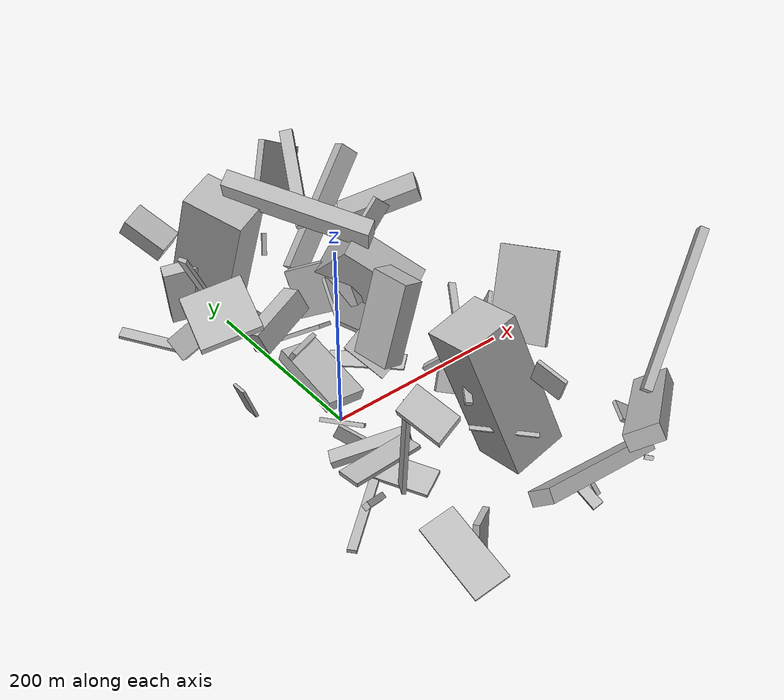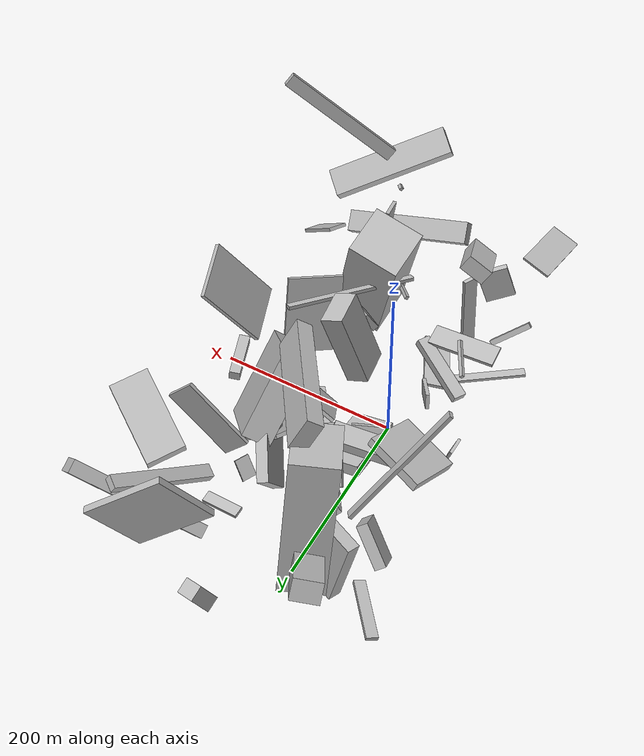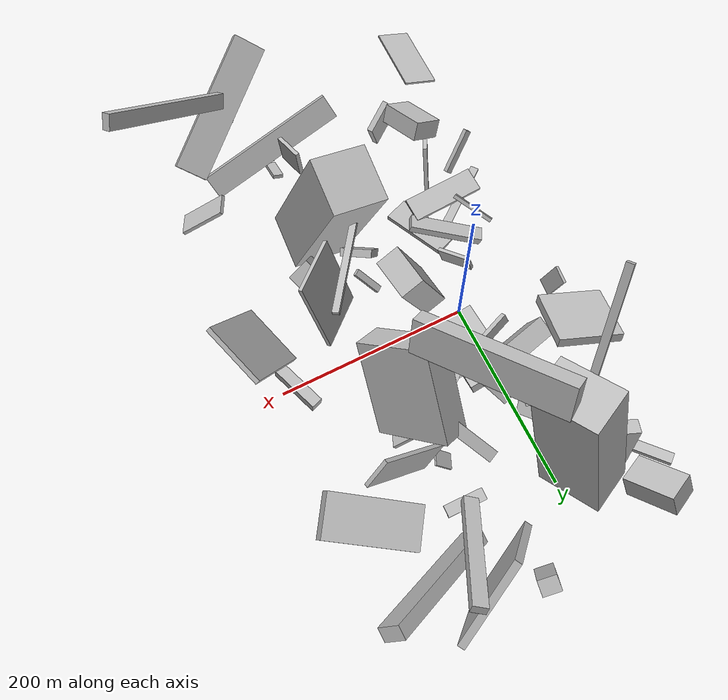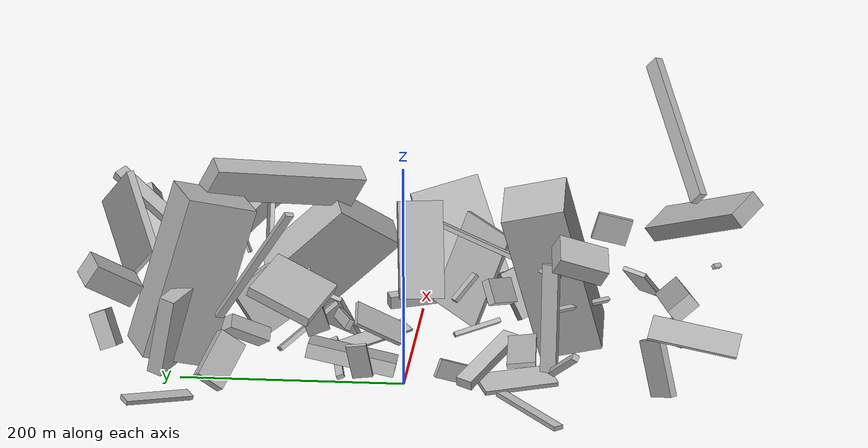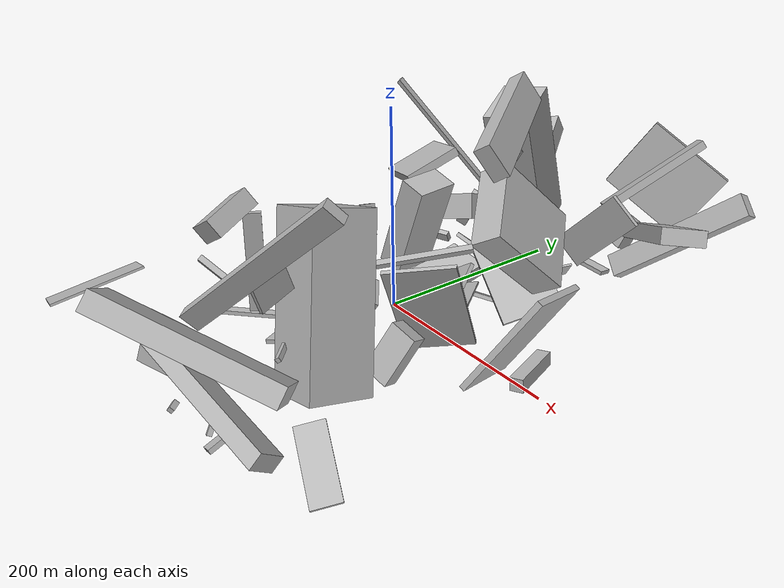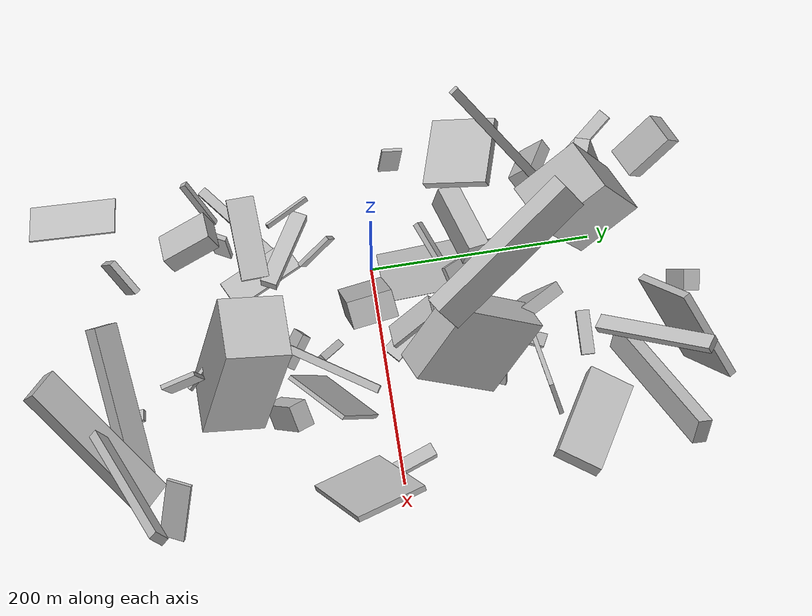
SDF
<sdf version="1.6">
 <world name="default">
  <model name="building_2">
   <static>0</static>
   <pose>-28.077921581289214 -135.4925500185197 135.75882159057304 1.965357414872305 -0.5212782521442816 0.08638813833298847</pose>
   <link name="link">
    <gravity>0</gravity>
    <pose>0 0 23.0 0 0 0</pose>
    <collision name="collision"><geometry><box><size>29 18 46</size></box></geometry></collision>
    <visual name="visual">
     <cast_shadows>0</cast_shadows>
     <geometry><box><size>29 18 46</size></box></geometry>
     <material>
      <script>
       <uri>model://HANNAS_wall/materials/scripts</uri>
       <uri>model://HANNAS_wall/materials/textures</uri>
       <name>vrc/HANNAS_wall</name>
      </script>
     </material>
    </visual>
   </link>
  </model>
  <model name="building_5">
   <static>0</static>
   <pose>84.2323748721512 82.61260588119646 39.636423034816204 0.7574015520571209 -0.22801859578492628 1.1823374553878339</pose>
   <link name="link">
    <gravity>0</gravity>
    <pose>0 0 2.0 0 0 0</pose>
    <collision name="collision"><geometry><box><size>60 82 4</size></box></geometry></collision>
    <visual name="visual">
     <cast_shadows>0</cast_shadows>
     <geometry><box><size>60 82 4</size></box></geometry>
     <material>
      <script>
       <uri>model://HANNAS_wall/materials/scripts</uri>
       <uri>model://HANNAS_wall/materials/textures</uri>
       <name>vrc/HANNAS_wall</name>
      </script>
     </material>
    </visual>
   </link>
  </model>
  <model name="building_6">
   <static>0</static>
   <pose>36.533790259864055 63.985927417758774 11.089640249159746 -3.049824708501027 -0.3883903565383661 -1.4268370130343577</pose>
   <link name="link">
    <gravity>0</gravity>
    <pose>0 0 2.0 0 0 0</pose>
    <collision name="collision"><geometry><box><size>7 80 4</size></box></geometry></collision>
    <visual name="visual">
     <cast_shadows>0</cast_shadows>
     <geometry><box><size>7 80 4</size></box></geometry>
     <material>
      <script>
       <uri>model://HANNAS_wall/materials/scripts</uri>
       <uri>model://HANNAS_wall/materials/textures</uri>
       <name>vrc/HANNAS_wall</name>
      </script>
     </material>
    </visual>
   </link>
  </model>
  <model name="building_8">
   <static>0</static>
   <pose>6.561336751795196 195.85633823105283 104.75732768667348 1.6594283061576993 0.28385549652941927 -1.0969756349459892</pose>
   <link name="link">
    <gravity>0</gravity>
    <pose>0 0 23.5 0 0 0</pose>
    <collision name="collision"><geometry><box><size>64 150 47</size></box></geometry></collision>
    <visual name="visual">
     <cast_shadows>0</cast_shadows>
     <geometry><box><size>64 150 47</size></box></geometry>
     <material>
      <script>
       <uri>model://HANNAS_wall/materials/scripts</uri>
       <uri>model://HANNAS_wall/materials/textures</uri>
       <name>vrc/HANNAS_wall</name>
      </script>
     </material>
    </visual>
   </link>
  </model>
  <model name="building_11">
   <static>0</static>
   <pose>143.91724486819183 -31.254401568298526 72.23126482967791 1.7500805742641816 0.32054610094710945 -0.7633622267411793</pose>
   <link name="link">
    <gravity>0</gravity>
    <pose>0 0 30.5 0 0 0</pose>
    <collision name="collision"><geometry><box><size>4 90 61</size></box></geometry></collision>
    <visual name="visual">
     <cast_shadows>0</cast_shadows>
     <geometry><box><size>4 90 61</size></box></geometry>
     <material>
      <script>
       <uri>model://HANNAS_wall/materials/scripts</uri>
       <uri>model://HANNAS_wall/materials/textures</uri>
       <name>vrc/HANNAS_wall</name>
      </script>
     </material>
    </visual>
   </link>
  </model>
  <model name="building_13">
   <static>0</static>
   <pose>111.81549015365066 -127.25933531816918 90.60414349734894 2.418666830579016 1.2242428078256662 -0.7427514458721205</pose>
   <link name="link">
    <gravity>0</gravity>
    <pose>0 0 28.5 0 0 0</pose>
    <collision name="collision"><geometry><box><size>150 57 57</size></box></geometry></collision>
    <visual name="visual">
     <cast_shadows>0</cast_shadows>
     <geometry><box><size>150 57 57</size></box></geometry>
     <material>
      <script>
       <uri>model://HANNAS_wall/materials/scripts</uri>
       <uri>model://HANNAS_wall/materials/textures</uri>
       <name>vrc/HANNAS_wall</name>
      </script>
     </material>
    </visual>
   </link>
  </model>
  <model name="building_16">
   <static>0</static>
   <pose>79.8772940960351 49.98719671121852 157.3199193407463 1.1898310206667864 -0.987084384476045 -2.212910500101704</pose>
   <link name="link">
    <gravity>0</gravity>
    <pose>0 0 75.0 0 0 0</pose>
    <collision name="collision"><geometry><box><size>35 17 150</size></box></geometry></collision>
    <visual name="visual">
     <cast_shadows>0</cast_shadows>
     <geometry><box><size>35 17 150</size></box></geometry>
     <material>
      <script>
       <uri>model://HANNAS_wall/materials/scripts</uri>
       <uri>model://HANNAS_wall/materials/textures</uri>
       <name>vrc/HANNAS_wall</name>
      </script>
     </material>
    </visual>
   </link>
  </model>
  <model name="building_18">
   <static>0</static>
   <pose>-61.48344934223279 -115.11963301348128 4.788785364855716 -3.1100774594400113 0.04659520486741724 -2.4701601331710745</pose>
   <link name="link">
    <gravity>0</gravity>
    <pose>0 0 2.0 0 0 0</pose>
    <collision name="collision"><geometry><box><size>89 9 4</size></box></geometry></collision>
    <visual name="visual">
     <cast_shadows>0</cast_shadows>
     <geometry><box><size>89 9 4</size></box></geometry>
     <material>
      <script>
       <uri>model://HANNAS_wall/materials/scripts</uri>
       <uri>model://HANNAS_wall/materials/textures</uri>
       <name>vrc/HANNAS_wall</name>
      </script>
     </material>
    </visual>
   </link>
  </model>
  <model name="building_20">
   <static>0</static>
   <pose>-51.41890146870562 257.7032145688921 99.28291315216119 -0.5549988851052058 0.17744111944107552 -2.7232561852881036</pose>
   <link name="link">
    <gravity>0</gravity>
    <pose>0 0 11.0 0 0 0</pose>
    <collision name="collision"><geometry><box><size>28 48 22</size></box></geometry></collision>
    <visual name="visual">
     <cast_shadows>0</cast_shadows>
     <geometry><box><size>28 48 22</size></box></geometry>
     <material>
      <script>
       <uri>model://HANNAS_wall/materials/scripts</uri>
       <uri>model://HANNAS_wall/materials/textures</uri>
       <name>vrc/HANNAS_wall</name>
      </script>
     </material>
    </visual>
   </link>
  </model>
  <model name="building_22">
   <static>0</static>
   <pose>-41.05394015820243 158.03452582841686 74.45168271766735 0.6596051981112768 0.20255919383012458 -0.9841541207012039</pose>
   <link name="link">
    <gravity>0</gravity>
    <pose>0 0 75.0 0 0 0</pose>
    <collision name="collision"><geometry><box><size>8 4 150</size></box></geometry></collision>
    <visual name="visual">
     <cast_shadows>0</cast_shadows>
     <geometry><box><size>8 4 150</size></box></geometry>
     <material>
      <script>
       <uri>model://HANNAS_wall/materials/scripts</uri>
       <uri>model://HANNAS_wall/materials/textures</uri>
       <name>vrc/HANNAS_wall</name>
      </script>
     </material>
    </visual>
   </link>
  </model>
  <model name="building_25">
   <static>0</static>
   <pose>136.19732894643224 -255.7094216957205 135.92152051602005 0.8297968130050105 -0.2930569359316144 2.2362842596840484</pose>
   <link name="link">
    <gravity>0</gravity>
    <pose>0 0 75.0 0 0 0</pose>
    <collision name="collision"><geometry><box><size>8 15 150</size></box></geometry></collision>
    <visual name="visual">
     <cast_shadows>0</cast_shadows>
     <geometry><box><size>8 15 150</size></box></geometry>
     <material>
      <script>
       <uri>model://HANNAS_wall/materials/scripts</uri>
       <uri>model://HANNAS_wall/materials/textures</uri>
       <name>vrc/HANNAS_wall</name>
      </script>
     </material>
    </visual>
   </link>
  </model>
  <model name="building_29">
   <static>0</static>
   <pose>44.17034252287611 -134.387049823508 88.86126852118855 -0.9336676088320623 -1.306238775513758 -1.2248868489905937</pose>
   <link name="link">
    <gravity>0</gravity>
    <pose>0 0 75.0 0 0 0</pose>
    <collision name="collision"><geometry><box><size>4 7 150</size></box></geometry></collision>
    <visual name="visual">
     <cast_shadows>0</cast_shadows>
     <geometry><box><size>4 7 150</size></box></geometry>
     <material>
      <script>
       <uri>model://HANNAS_wall/materials/scripts</uri>
       <uri>model://HANNAS_wall/materials/textures</uri>
       <name>vrc/HANNAS_wall</name>
      </script>
     </material>
    </visual>
   </link>
  </model>
  <model name="building_30">
   <static>0</static>
   <pose>194.44684986697507 -204.1476284580889 32.55716649621175 0.6565446376368466 -0.15847734125363377 1.118498700576509</pose>
   <link name="link">
    <gravity>0</gravity>
    <pose>0 0 2.0 0 0 0</pose>
    <collision name="collision"><geometry><box><size>23 57 4</size></box></geometry></collision>
    <visual name="visual">
     <cast_shadows>0</cast_shadows>
     <geometry><box><size>23 57 4</size></box></geometry>
     <material>
      <script>
       <uri>model://HANNAS_wall/materials/scripts</uri>
       <uri>model://HANNAS_wall/materials/textures</uri>
       <name>vrc/HANNAS_wall</name>
      </script>
     </material>
    </visual>
   </link>
  </model>
  <model name="building_31">
   <static>0</static>
   <pose>98.03608983364143 -229.1678409043021 43.43308630904886 0.35827753093758274 -0.8461940479167904 1.398403617816241</pose>
   <link name="link">
    <gravity>0</gravity>
    <pose>0 0 12.5 0 0 0</pose>
    <collision name="collision"><geometry><box><size>14 150 25</size></box></geometry></collision>
    <visual name="visual">
     <cast_shadows>0</cast_shadows>
     <geometry><box><size>14 150 25</size></box></geometry>
     <material>
      <script>
       <uri>model://HANNAS_wall/materials/scripts</uri>
       <uri>model://HANNAS_wall/materials/textures</uri>
       <name>vrc/HANNAS_wall</name>
      </script>
     </material>
    </visual>
   </link>
  </model>
  <model name="building_32">
   <static>0</static>
   <pose>99.51091329492351 -178.82337924328027 118.16177823151321 1.8759055209213944 -1.2815974727619508 -1.683761479937699</pose>
   <link name="link">
    <gravity>0</gravity>
    <pose>0 0 2.0 0 0 0</pose>
    <collision name="collision"><geometry><box><size>25 32 4</size></box></geometry></collision>
    <visual name="visual">
     <cast_shadows>0</cast_shadows>
     <geometry><box><size>25 32 4</size></box></geometry>
     <material>
      <script>
       <uri>model://HANNAS_wall/materials/scripts</uri>
       <uri>model://HANNAS_wall/materials/textures</uri>
       <name>vrc/HANNAS_wall</name>
      </script>
     </material>
    </visual>
   </link>
  </model>
  <model name="building_36">
   <static>0</static>
   <pose>-39.82207419633159 81.04194851132804 115.78637293248654 -1.7730047206557609 -0.4029775703085149 1.3480885039355262</pose>
   <link name="link">
    <gravity>0</gravity>
    <pose>0 0 31.0 0 0 0</pose>
    <collision name="collision"><geometry><box><size>59 9 62</size></box></geometry></collision>
    <visual name="visual">
     <cast_shadows>0</cast_shadows>
     <geometry><box><size>59 9 62</size></box></geometry>
     <material>
      <script>
       <uri>model://HANNAS_wall/materials/scripts</uri>
       <uri>model://HANNAS_wall/materials/textures</uri>
       <name>vrc/HANNAS_wall</name>
      </script>
     </material>
    </visual>
   </link>
  </model>
  <model name="building_37">
   <static>0</static>
   <pose>-62.67924427500042 207.12646594694317 60.603325832311675 1.4827586129663017 -0.24392767413993338 1.2305515022820621</pose>
   <link name="link">
    <gravity>0</gravity>
    <pose>0 0 19.5 0 0 0</pose>
    <collision name="collision"><geometry><box><size>14 75 39</size></box></geometry></collision>
    <visual name="visual">
     <cast_shadows>0</cast_shadows>
     <geometry><box><size>14 75 39</size></box></geometry>
     <material>
      <script>
       <uri>model://HANNAS_wall/materials/scripts</uri>
       <uri>model://HANNAS_wall/materials/textures</uri>
       <name>vrc/HANNAS_wall</name>
      </script>
     </material>
    </visual>
   </link>
  </model>
  <model name="building_38">
   <static>0</static>
   <pose>53.72161583813893 -30.469177152015778 108.9632053507379 -1.580017883568845 -1.2314335869569053 0.14933126224363016</pose>
   <link name="link">
    <gravity>0</gravity>
    <pose>0 0 20.0 0 0 0</pose>
    <collision name="collision"><geometry><box><size>87 24 40</size></box></geometry></collision>
    <visual name="visual">
     <cast_shadows>0</cast_shadows>
     <geometry><box><size>87 24 40</size></box></geometry>
     <material>
      <script>
       <uri>model://HANNAS_wall/materials/scripts</uri>
       <uri>model://HANNAS_wall/materials/textures</uri>
       <name>vrc/HANNAS_wall</name>
      </script>
     </material>
    </visual>
   </link>
  </model>
  <model name="building_39">
   <static>0</static>
   <pose>61.16653620594562 -70.74318692677993 66.99017246951475 -1.9673699610208624 0.9998672512027429 -2.5435271077006636</pose>
   <link name="link">
    <gravity>0</gravity>
    <pose>0 0 16.0 0 0 0</pose>
    <collision name="collision"><geometry><box><size>23 8 32</size></box></geometry></collision>
    <visual name="visual">
     <cast_shadows>0</cast_shadows>
     <geometry><box><size>23 8 32</size></box></geometry>
     <material>
      <script>
       <uri>model://HANNAS_wall/materials/scripts</uri>
       <uri>model://HANNAS_wall/materials/textures</uri>
       <name>vrc/HANNAS_wall</name>
      </script>
     </material>
    </visual>
   </link>
  </model>
  <model name="building_40">
   <static>0</static>
   <pose>106.09864096796497 -242.8547290196711 21.047245204429384 -0.48326042141245484 -0.3757318316316515 -0.2551385772194624</pose>
   <link name="link">
    <gravity>0</gravity>
    <pose>0 0 7.5 0 0 0</pose>
    <collision name="collision"><geometry><box><size>4 4 15</size></box></geometry></collision>
    <visual name="visual">
     <cast_shadows>0</cast_shadows>
     <geometry><box><size>4 4 15</size></box></geometry>
     <material>
      <script>
       <uri>model://HANNAS_wall/materials/scripts</uri>
       <uri>model://HANNAS_wall/materials/textures</uri>
       <name>vrc/HANNAS_wall</name>
      </script>
     </material>
    </visual>
   </link>
  </model>
  <model name="building_41">
   <static>0</static>
   <pose>-23.05304612374904 -123.69658281291171 75.14096751180298 1.304706251562262 -1.5203989616074607 -0.21420757760808043</pose>
   <link name="link">
    <gravity>0</gravity>
    <pose>0 0 8.0 0 0 0</pose>
    <collision name="collision"><geometry><box><size>98 4 16</size></box></geometry></collision>
    <visual name="visual">
     <cast_shadows>0</cast_shadows>
     <geometry><box><size>98 4 16</size></box></geometry>
     <material>
      <script>
       <uri>model://HANNAS_wall/materials/scripts</uri>
       <uri>model://HANNAS_wall/materials/textures</uri>
       <name>vrc/HANNAS_wall</name>
      </script>
     </material>
    </visual>
   </link>
  </model>
  <model name="building_42">
   <static>0</static>
   <pose>190.72321018270034 -220.43495022990737 93.0955015418593 1.1556386449002167 -0.48331315424283233 -0.720578385249718</pose>
   <link name="link">
    <gravity>0</gravity>
    <pose>0 0 70.5 0 0 0</pose>
    <collision name="collision"><geometry><box><size>32 16 141</size></box></geometry></collision>
    <visual name="visual">
     <cast_shadows>0</cast_shadows>
     <geometry><box><size>32 16 141</size></box></geometry>
     <material>
      <script>
       <uri>model://HANNAS_wall/materials/scripts</uri>
       <uri>model://HANNAS_wall/materials/textures</uri>
       <name>vrc/HANNAS_wall</name>
      </script>
     </material>
    </visual>
   </link>
  </model>
  <model name="building_46">
   <static>0</static>
   <pose>54.29535669258168 147.51158724097013 42.05963039511562 0.4828492368991201 -1.0205515827937879 1.5789459595811315</pose>
   <link name="link">
    <gravity>0</gravity>
    <pose>0 0 35.5 0 0 0</pose>
    <collision name="collision"><geometry><box><size>52 12 71</size></box></geometry></collision>
    <visual name="visual">
     <cast_shadows>0</cast_shadows>
     <geometry><box><size>52 12 71</size></box></geometry>
     <material>
      <script>
       <uri>model://HANNAS_wall/materials/scripts</uri>
       <uri>model://HANNAS_wall/materials/textures</uri>
       <name>vrc/HANNAS_wall</name>
      </script>
     </material>
    </visual>
   </link>
  </model>
  <model name="building_49">
   <static>0</static>
   <pose>124.58424795564548 -85.32057700942784 40.150795754069705 1.1745858687902657 0.3873456016805238 0.2314890029302911</pose>
   <link name="link">
    <gravity>0</gravity>
    <pose>0 0 8.5 0 0 0</pose>
    <collision name="collision"><geometry><box><size>24 46 17</size></box></geometry></collision>
    <visual name="visual">
     <cast_shadows>0</cast_shadows>
     <geometry><box><size>24 46 17</size></box></geometry>
     <material>
      <script>
       <uri>model://HANNAS_wall/materials/scripts</uri>
       <uri>model://HANNAS_wall/materials/textures</uri>
       <name>vrc/HANNAS_wall</name>
      </script>
     </material>
    </visual>
   </link>
  </model>
  <model name="building_52">
   <static>0</static>
   <pose>-18.395672278974978 -46.34359116153328 20.719452880238087 1.6431789307445022 -1.188237107638643 -1.084975366499897</pose>
   <link name="link">
    <gravity>0</gravity>
    <pose>0 0 2.0 0 0 0</pose>
    <collision name="collision"><geometry><box><size>17 37 4</size></box></geometry></collision>
    <visual name="visual">
     <cast_shadows>0</cast_shadows>
     <geometry><box><size>17 37 4</size></box></geometry>
     <material>
      <script>
       <uri>model://HANNAS_wall/materials/scripts</uri>
       <uri>model://HANNAS_wall/materials/textures</uri>
       <name>vrc/HANNAS_wall</name>
      </script>
     </material>
    </visual>
   </link>
  </model>
  <model name="building_53">
   <static>0</static>
   <pose>-19.101014820206856 -227.87569010796057 30.371800531066896 1.6411951338758597 -0.31110380445166563 -2.5634798788783977</pose>
   <link name="link">
    <gravity>0</gravity>
    <pose>0 0 3.0 0 0 0</pose>
    <collision name="collision"><geometry><box><size>35 51 6</size></box></geometry></collision>
    <visual name="visual">
     <cast_shadows>0</cast_shadows>
     <geometry><box><size>35 51 6</size></box></geometry>
     <material>
      <script>
       <uri>model://HANNAS_wall/materials/scripts</uri>
       <uri>model://HANNAS_wall/materials/textures</uri>
       <name>vrc/HANNAS_wall</name>
      </script>
     </material>
    </visual>
   </link>
  </model>
  <model name="building_55">
   <static>0</static>
   <pose>145.2766642264788 189.37162474569294 78.75276900728825 -1.2201866854188745 -0.12606314348779657 -2.157175782238382</pose>
   <link name="link">
    <gravity>0</gravity>
    <pose>0 0 44.5 0 0 0</pose>
    <collision name="collision"><geometry><box><size>41 15 89</size></box></geometry></collision>
    <visual name="visual">
     <cast_shadows>0</cast_shadows>
     <geometry><box><size>41 15 89</size></box></geometry>
     <material>
      <script>
       <uri>model://HANNAS_wall/materials/scripts</uri>
       <uri>model://HANNAS_wall/materials/textures</uri>
       <name>vrc/HANNAS_wall</name>
      </script>
     </material>
    </visual>
   </link>
  </model>
  <model name="building_57">
   <static>0</static>
   <pose>-48.852724114038494 -69.50383931305394 71.57277848196638 -0.7272457403825164 -0.15564486514129966 -1.0559307587692006</pose>
   <link name="link">
    <gravity>0</gravity>
    <pose>0 0 2.0 0 0 0</pose>
    <collision name="collision"><geometry><box><size>44 4 4</size></box></geometry></collision>
    <visual name="visual">
     <cast_shadows>0</cast_shadows>
     <geometry><box><size>44 4 4</size></box></geometry>
     <material>
      <script>
       <uri>model://HANNAS_wall/materials/scripts</uri>
       <uri>model://HANNAS_wall/materials/textures</uri>
       <name>vrc/HANNAS_wall</name>
      </script>
     </material>
    </visual>
   </link>
  </model>
  <model name="building_58">
   <static>0</static>
   <pose>151.75012412018708 241.09419197223454 58.197257912334216 0.9738632309772239 0.735483131621185 -0.3975750135415935</pose>
   <link name="link">
    <gravity>0</gravity>
    <pose>0 0 7.0 0 0 0</pose>
    <collision name="collision"><geometry><box><size>23 150 14</size></box></geometry></collision>
    <visual name="visual">
     <cast_shadows>0</cast_shadows>
     <geometry><box><size>23 150 14</size></box></geometry>
     <material>
      <script>
       <uri>model://HANNAS_wall/materials/scripts</uri>
       <uri>model://HANNAS_wall/materials/textures</uri>
       <name>vrc/HANNAS_wall</name>
      </script>
     </material>
    </visual>
   </link>
  </model>
  <model name="building_60">
   <static>0</static>
   <pose>117.00743041213224 50.34973912160767 71.7280157701172 0.7111129139356057 -0.7570511030923963 -1.7340530133190504</pose>
   <link name="link">
    <gravity>0</gravity>
    <pose>0 0 39.5 0 0 0</pose>
    <collision name="collision"><geometry><box><size>95 31 79</size></box></geometry></collision>
    <visual name="visual">
     <cast_shadows>0</cast_shadows>
     <geometry><box><size>95 31 79</size></box></geometry>
     <material>
      <script>
       <uri>model://HANNAS_wall/materials/scripts</uri>
       <uri>model://HANNAS_wall/materials/textures</uri>
       <name>vrc/HANNAS_wall</name>
      </script>
     </material>
    </visual>
   </link>
  </model>
  <model name="building_62">
   <static>0</static>
   <pose>197.10087984985495 -2.4903857087845056 66.3985280145477 1.1617559215148296 -0.9761515540645398 0.659556476393523</pose>
   <link name="link">
    <gravity>0</gravity>
    <pose>0 0 33.0 0 0 0</pose>
    <collision name="collision"><geometry><box><size>96 5 66</size></box></geometry></collision>
    <visual name="visual">
     <cast_shadows>0</cast_shadows>
     <geometry><box><size>96 5 66</size></box></geometry>
     <material>
      <script>
       <uri>model://HANNAS_wall/materials/scripts</uri>
       <uri>model://HANNAS_wall/materials/textures</uri>
       <name>vrc/HANNAS_wall</name>
      </script>
     </material>
    </visual>
   </link>
  </model>
  <model name="building_63">
   <static>0</static>
   <pose>129.47358827973528 -274.1540090940561 72.48914500945732 0.10683561030248093 0.7225161827199938 0.7967552269716598</pose>
   <link name="link">
    <gravity>0</gravity>
    <pose>0 0 2.0 0 0 0</pose>
    <collision name="collision"><geometry><box><size>4 8 4</size></box></geometry></collision>
    <visual name="visual">
     <cast_shadows>0</cast_shadows>
     <geometry><box><size>4 8 4</size></box></geometry>
     <material>
      <script>
       <uri>model://HANNAS_wall/materials/scripts</uri>
       <uri>model://HANNAS_wall/materials/textures</uri>
       <name>vrc/HANNAS_wall</name>
      </script>
     </material>
    </visual>
   </link>
  </model>
  <model name="building_68">
   <static>0</static>
   <pose>3.1445890617578236 110.73454592907623 28.509695479222337 -0.9506836797256534 -0.3637667790743301 -2.856272849409229</pose>
   <link name="link">
    <gravity>0</gravity>
    <pose>0 0 32.5 0 0 0</pose>
    <collision name="collision"><geometry><box><size>19 4 65</size></box></geometry></collision>
    <visual name="visual">
     <cast_shadows>0</cast_shadows>
     <geometry><box><size>19 4 65</size></box></geometry>
     <material>
      <script>
       <uri>model://HANNAS_wall/materials/scripts</uri>
       <uri>model://HANNAS_wall/materials/textures</uri>
       <name>vrc/HANNAS_wall</name>
      </script>
     </material>
    </visual>
   </link>
  </model>
  <model name="building_69">
   <static>0</static>
   <pose>131.77638448121667 133.17506336841024 87.19127234706679 -1.408371895292767 -0.7956852886189055 0.06182620737048193</pose>
   <link name="link">
    <gravity>0</gravity>
    <pose>0 0 2.0 0 0 0</pose>
    <collision name="collision"><geometry><box><size>85 33 4</size></box></geometry></collision>
    <visual name="visual">
     <cast_shadows>0</cast_shadows>
     <geometry><box><size>85 33 4</size></box></geometry>
     <material>
      <script>
       <uri>model://HANNAS_wall/materials/scripts</uri>
       <uri>model://HANNAS_wall/materials/textures</uri>
       <name>vrc/HANNAS_wall</name>
      </script>
     </material>
    </visual>
   </link>
  </model>
  <model name="building_70">
   <static>0</static>
   <pose>-54.886922557664604 -57.630755141385535 23.117489948945604 1.2799068757647885 -0.11594658171449808 1.0841347705971156</pose>
   <link name="link">
    <gravity>0</gravity>
    <pose>0 0 38.5 0 0 0</pose>
    <collision name="collision"><geometry><box><size>15 9 77</size></box></geometry></collision>
    <visual name="visual">
     <cast_shadows>0</cast_shadows>
     <geometry><box><size>15 9 77</size></box></geometry>
     <material>
      <script>
       <uri>model://HANNAS_wall/materials/scripts</uri>
       <uri>model://HANNAS_wall/materials/textures</uri>
       <name>vrc/HANNAS_wall</name>
      </script>
     </material>
    </visual>
   </link>
  </model>
  <model name="building_72">
   <static>0</static>
   <pose>7.191609605738391 -131.60463292745806 9.678167361078476 -1.5614018671478507 -0.23028764665424115 0.44600997893411765</pose>
   <link name="link">
    <gravity>0</gravity>
    <pose>0 0 34.5 0 0 0</pose>
    <collision name="collision"><geometry><box><size>29 4 69</size></box></geometry></collision>
    <visual name="visual">
     <cast_shadows>0</cast_shadows>
     <geometry><box><size>29 4 69</size></box></geometry>
     <material>
      <script>
       <uri>model://HANNAS_wall/materials/scripts</uri>
       <uri>model://HANNAS_wall/materials/textures</uri>
       <name>vrc/HANNAS_wall</name>
      </script>
     </material>
    </visual>
   </link>
  </model>
  <model name="building_73">
   <static>0</static>
   <pose>119.05944827459831 232.5405044860133 113.39497356860328 -0.26823690924278726 -0.5533273512954798 1.1067525989020894</pose>
   <link name="link">
    <gravity>0</gravity>
    <pose>0 0 4.0 0 0 0</pose>
    <collision name="collision"><geometry><box><size>113 14 8</size></box></geometry></collision>
    <visual name="visual">
     <cast_shadows>0</cast_shadows>
     <geometry><box><size>113 14 8</size></box></geometry>
     <material>
      <script>
       <uri>model://HANNAS_wall/materials/scripts</uri>
       <uri>model://HANNAS_wall/materials/textures</uri>
       <name>vrc/HANNAS_wall</name>
      </script>
     </material>
    </visual>
   </link>
  </model>
  <model name="building_78">
   <static>0</static>
   <pose>91.21127147160097 180.58044027200623 22.602654023316397 -0.07936166845599198 0.0457056797274691 -0.027779393547563036</pose>
   <link name="link">
    <gravity>0</gravity>
    <pose>0 0 2.0 0 0 0</pose>
    <collision name="collision"><geometry><box><size>40 12 4</size></box></geometry></collision>
    <visual name="visual">
     <cast_shadows>0</cast_shadows>
     <geometry><box><size>40 12 4</size></box></geometry>
     <material>
      <script>
       <uri>model://HANNAS_wall/materials/scripts</uri>
       <uri>model://HANNAS_wall/materials/textures</uri>
       <name>vrc/HANNAS_wall</name>
      </script>
     </material>
    </visual>
   </link>
  </model>
  <model name="building_79">
   <static>0</static>
   <pose>-35.92125549970708 -94.46837544021713 46.63103267255849 1.4702116627938717 0.01636375431892135 0.046737196029556186</pose>
   <link name="link">
    <gravity>0</gravity>
    <pose>0 0 12.5 0 0 0</pose>
    <collision name="collision"><geometry><box><size>75 4 25</size></box></geometry></collision>
    <visual name="visual">
     <cast_shadows>0</cast_shadows>
     <geometry><box><size>75 4 25</size></box></geometry>
     <material>
      <script>
       <uri>model://HANNAS_wall/materials/scripts</uri>
       <uri>model://HANNAS_wall/materials/textures</uri>
       <name>vrc/HANNAS_wall</name>
      </script>
     </material>
    </visual>
   </link>
  </model>
  <model name="building_81">
   <static>0</static>
   <pose>-65.16523015370528 181.73802684511145 9.072480010653132 -1.4277396589509386 -0.22649965847817755 0.6527077665546993</pose>
   <link name="link">
    <gravity>0</gravity>
    <pose>0 0 33.5 0 0 0</pose>
    <collision name="collision"><geometry><box><size>12 4 67</size></box></geometry></collision>
    <visual name="visual">
     <cast_shadows>0</cast_shadows>
     <geometry><box><size>12 4 67</size></box></geometry>
     <material>
      <script>
       <uri>model://HANNAS_wall/materials/scripts</uri>
       <uri>model://HANNAS_wall/materials/textures</uri>
       <name>vrc/HANNAS_wall</name>
      </script>
     </material>
    </visual>
   </link>
  </model>
  <model name="building_83">
   <static>0</static>
   <pose>66.06335966567121 274.5105770411183 21.182735268863805 1.0730347249166474 1.151399130722174 -2.1987795551958267</pose>
   <link name="link">
    <gravity>0</gravity>
    <pose>0 0 9.5 0 0 0</pose>
    <collision name="collision"><geometry><box><size>34 16 19</size></box></geometry></collision>
    <visual name="visual">
     <cast_shadows>0</cast_shadows>
     <geometry><box><size>34 16 19</size></box></geometry>
     <material>
      <script>
       <uri>model://HANNAS_wall/materials/scripts</uri>
       <uri>model://HANNAS_wall/materials/textures</uri>
       <name>vrc/HANNAS_wall</name>
      </script>
     </material>
    </visual>
   </link>
  </model>
  <model name="building_84">
   <static>0</static>
   <pose>94.90694033902561 247.1470501755919 72.21820294361194 0.10540837442564896 -0.5939503762273641 -2.6526040239056887</pose>
   <link name="link">
    <gravity>0</gravity>
    <pose>0 0 38.5 0 0 0</pose>
    <collision name="collision"><geometry><box><size>90 7 77</size></box></geometry></collision>
    <visual name="visual">
     <cast_shadows>0</cast_shadows>
     <geometry><box><size>90 7 77</size></box></geometry>
     <material>
      <script>
       <uri>model://HANNAS_wall/materials/scripts</uri>
       <uri>model://HANNAS_wall/materials/textures</uri>
       <name>vrc/HANNAS_wall</name>
      </script>
     </material>
    </visual>
   </link>
  </model>
  <model name="building_85">
   <static>0</static>
   <pose>71.35417235618945 -153.57110028702738 52.69132611715678 -0.5889397489241103 -0.0669394121623487 2.362712206924566</pose>
   <link name="link">
    <gravity>0</gravity>
    <pose>0 0 2.0 0 0 0</pose>
    <collision name="collision"><geometry><box><size>64 4 4</size></box></geometry></collision>
    <visual name="visual">
     <cast_shadows>0</cast_shadows>
     <geometry><box><size>64 4 4</size></box></geometry>
     <material>
      <script>
       <uri>model://HANNAS_wall/materials/scripts</uri>
       <uri>model://HANNAS_wall/materials/textures</uri>
       <name>vrc/HANNAS_wall</name>
      </script>
     </material>
    </visual>
   </link>
  </model>
  <model name="building_86">
   <static>0</static>
   <pose>83.0131253500263 -46.047831833767155 63.808297945314216 1.4928349547248676 -0.7086424241589852 -0.8776024394537242</pose>
   <link name="link">
    <gravity>0</gravity>
    <pose>0 0 3.5 0 0 0</pose>
    <collision name="collision"><geometry><box><size>31 4 7</size></box></geometry></collision>
    <visual name="visual">
     <cast_shadows>0</cast_shadows>
     <geometry><box><size>31 4 7</size></box></geometry>
     <material>
      <script>
       <uri>model://HANNAS_wall/materials/scripts</uri>
       <uri>model://HANNAS_wall/materials/textures</uri>
       <name>vrc/HANNAS_wall</name>
      </script>
     </material>
    </visual>
   </link>
  </model>
  <model name="building_93">
   <static>0</static>
   <pose>-4.1796082816533975 145.01990652276854 45.747721155038384 0.7413718916846154 -0.8158429008072681 -0.02633856880568126</pose>
   <link name="link">
    <gravity>0</gravity>
    <pose>0 0 8.5 0 0 0</pose>
    <collision name="collision"><geometry><box><size>13 42 17</size></box></geometry></collision>
    <visual name="visual">
     <cast_shadows>0</cast_shadows>
     <geometry><box><size>13 42 17</size></box></geometry>
     <material>
      <script>
       <uri>model://HANNAS_wall/materials/scripts</uri>
       <uri>model://HANNAS_wall/materials/textures</uri>
       <name>vrc/HANNAS_wall</name>
      </script>
     </material>
    </visual>
   </link>
  </model>
  <model name="building_94">
   <static>0</static>
   <pose>70.40792215380849 28.674501146966623 41.40083653126852 -2.388067673584375 0.7312125605047853 1.0056046503600569</pose>
   <link name="link">
    <gravity>0</gravity>
    <pose>0 0 12.5 0 0 0</pose>
    <collision name="collision"><geometry><box><size>4 49 25</size></box></geometry></collision>
    <visual name="visual">
     <cast_shadows>0</cast_shadows>
     <geometry><box><size>4 49 25</size></box></geometry>
     <material>
      <script>
       <uri>model://HANNAS_wall/materials/scripts</uri>
       <uri>model://HANNAS_wall/materials/textures</uri>
       <name>vrc/HANNAS_wall</name>
      </script>
     </material>
    </visual>
   </link>
  </model>
  <model name="building_101">
   <static>0</static>
   <pose>-9.18663997998054 78.92753170161025 68.02430823591578 0.32626027748429454 0.2361499299474733 -2.8580513936099847</pose>
   <link name="link">
    <gravity>0</gravity>
    <pose>0 0 12.5 0 0 0</pose>
    <collision name="collision"><geometry><box><size>65 20 25</size></box></geometry></collision>
    <visual name="visual">
     <cast_shadows>0</cast_shadows>
     <geometry><box><size>65 20 25</size></box></geometry>
     <material>
      <script>
       <uri>model://HANNAS_wall/materials/scripts</uri>
       <uri>model://HANNAS_wall/materials/textures</uri>
       <name>vrc/HANNAS_wall</name>
      </script>
     </material>
    </visual>
   </link>
  </model>
  <model name="building_102">
   <static>0</static>
   <pose>-70.7097970240901 151.7086159051198 44.940325298976624 2.2185529623221107 0.7184250649659851 2.626408367989963</pose>
   <link name="link">
    <gravity>0</gravity>
    <pose>0 0 6.0 0 0 0</pose>
    <collision name="collision"><geometry><box><size>46 26 12</size></box></geometry></collision>
    <visual name="visual">
     <cast_shadows>0</cast_shadows>
     <geometry><box><size>46 26 12</size></box></geometry>
     <material>
      <script>
       <uri>model://HANNAS_wall/materials/scripts</uri>
       <uri>model://HANNAS_wall/materials/textures</uri>
       <name>vrc/HANNAS_wall</name>
      </script>
     </material>
    </visual>
   </link>
  </model>
  <model name="building_105">
   <static>0</static>
   <pose>105.50197720633587 -232.8523869518425 10.551104754644928 -0.3803518989485273 0.3377797043480824 3.0399304392065916</pose>
   <link name="link">
    <gravity>0</gravity>
    <pose>0 0 2.0 0 0 0</pose>
    <collision name="collision"><geometry><box><size>11 25 4</size></box></geometry></collision>
    <visual name="visual">
     <cast_shadows>0</cast_shadows>
     <geometry><box><size>11 25 4</size></box></geometry>
     <material>
      <script>
       <uri>model://HANNAS_wall/materials/scripts</uri>
       <uri>model://HANNAS_wall/materials/textures</uri>
       <name>vrc/HANNAS_wall</name>
      </script>
     </material>
    </visual>
   </link>
  </model>
  <model name="building_107">
   <static>0</static>
   <pose>-9.751031706778384 46.398760028264036 24.459885983989295 2.251344775595142 1.2940280196294225 2.2767829345534727</pose>
   <link name="link">
    <gravity>0</gravity>
    <pose>0 0 22.0 0 0 0</pose>
    <collision name="collision"><geometry><box><size>13 80 44</size></box></geometry></collision>
    <visual name="visual">
     <cast_shadows>0</cast_shadows>
     <geometry><box><size>13 80 44</size></box></geometry>
     <material>
      <script>
       <uri>model://HANNAS_wall/materials/scripts</uri>
       <uri>model://HANNAS_wall/materials/textures</uri>
       <name>vrc/HANNAS_wall</name>
      </script>
     </material>
    </visual>
   </link>
  </model>
  <model name="building_108">
   <static>0</static>
   <pose>12.091016603202032 59.01867579611451 61.23276767151266 1.4987389017617938 -1.0590464389975385 -1.13074239446287</pose>
   <link name="link">
    <gravity>0</gravity>
    <pose>0 0 18.5 0 0 0</pose>
    <collision name="collision"><geometry><box><size>10 5 37</size></box></geometry></collision>
    <visual name="visual">
     <cast_shadows>0</cast_shadows>
     <geometry><box><size>10 5 37</size></box></geometry>
     <material>
      <script>
       <uri>model://HANNAS_wall/materials/scripts</uri>
       <uri>model://HANNAS_wall/materials/textures</uri>
       <name>vrc/HANNAS_wall</name>
      </script>
     </material>
    </visual>
   </link>
  </model>
  <model name="building_109">
   <static>0</static>
   <pose>16.054369038135373 140.3816816422096 125.508553433833 -2.6983319974935216 -1.0430559378119297 0.8737799043105853</pose>
   <link name="link">
    <gravity>0</gravity>
    <pose>0 0 1.0 0 0 0</pose>
    <collision name="collision"><geometry><box><size>22 5 2</size></box></geometry></collision>
    <visual name="visual">
     <cast_shadows>0</cast_shadows>
     <geometry><box><size>22 5 2</size></box></geometry>
     <material>
      <script>
       <uri>model://HANNAS_wall/materials/scripts</uri>
       <uri>model://HANNAS_wall/materials/textures</uri>
       <name>vrc/HANNAS_wall</name>
      </script>
     </material>
    </visual>
   </link>
  </model>
  <model name="building_110">
   <static>0</static>
   <pose>-86.81210907921981 21.37106420944797 54.331045015626984 2.021581192009371 -1.2511507451887989 2.657336340883596</pose>
   <link name="link">
    <gravity>0</gravity>
    <pose>0 0 9.0 0 0 0</pose>
    <collision name="collision"><geometry><box><size>34 3 18</size></box></geometry></collision>
    <visual name="visual">
     <cast_shadows>0</cast_shadows>
     <geometry><box><size>34 3 18</size></box></geometry>
     <material>
      <script>
       <uri>model://HANNAS_wall/materials/scripts</uri>
       <uri>model://HANNAS_wall/materials/textures</uri>
       <name>vrc/HANNAS_wall</name>
      </script>
     </material>
    </visual>
   </link>
  </model>
  <model name="building_113">
   <static>0</static>
   <pose>67.64107033332633 41.96667989454353 22.92845342483497 1.7982545676376145 -0.10243797133142514 -0.8930086644821881</pose>
   <link name="link">
    <gravity>0</gravity>
    <pose>0 0 9.5 0 0 0</pose>
    <collision name="collision"><geometry><box><size>80 2 19</size></box></geometry></collision>
    <visual name="visual">
     <cast_shadows>0</cast_shadows>
     <geometry><box><size>80 2 19</size></box></geometry>
     <material>
      <script>
       <uri>model://HANNAS_wall/materials/scripts</uri>
       <uri>model://HANNAS_wall/materials/textures</uri>
       <name>vrc/HANNAS_wall</name>
      </script>
     </material>
    </visual>
   </link>
  </model>
  <model name="building_114">
   <static>0</static>
   <pose>-52.41563005727832 -259.3782115648986 82.48054027915944 1.8624789912217743 0.17124930457237297 -1.6475378227180295</pose>
   <link name="link">
    <gravity>0</gravity>
    <pose>0 0 17.0 0 0 0</pose>
    <collision name="collision"><geometry><box><size>78 2 34</size></box></geometry></collision>
    <visual name="visual">
     <cast_shadows>0</cast_shadows>
     <geometry><box><size>78 2 34</size></box></geometry>
     <material>
      <script>
       <uri>model://HANNAS_wall/materials/scripts</uri>
       <uri>model://HANNAS_wall/materials/textures</uri>
       <name>vrc/HANNAS_wall</name>
      </script>
     </material>
    </visual>
   </link>
  </model>
  <model name="building_115">
   <static>0</static>
   <pose>184.80402385226185 4.916828319030163 10.668168788195038 -0.03659644068261534 -0.11249490419074187 0.35410616092928915</pose>
   <link name="link">
    <gravity>0</gravity>
    <pose>0 0 6.0 0 0 0</pose>
    <collision name="collision"><geometry><box><size>12 53 12</size></box></geometry></collision>
    <visual name="visual">
     <cast_shadows>0</cast_shadows>
     <geometry><box><size>12 53 12</size></box></geometry>
     <material>
      <script>
       <uri>model://HANNAS_wall/materials/scripts</uri>
       <uri>model://HANNAS_wall/materials/textures</uri>
       <name>vrc/HANNAS_wall</name>
      </script>
     </material>
    </visual>
   </link>
  </model>
  <model name="building_116">
   <static>0</static>
   <pose>85.29746389060873 139.8281116995193 23.34647642822712 -0.7223106589238905 0.07485889096484118 -1.9759617137567362</pose>
   <link name="link">
    <gravity>0</gravity>
    <pose>0 0 11.5 0 0 0</pose>
    <collision name="collision"><geometry><box><size>16 2 23</size></box></geometry></collision>
    <visual name="visual">
     <cast_shadows>0</cast_shadows>
     <geometry><box><size>16 2 23</size></box></geometry>
     <material>
      <script>
       <uri>model://HANNAS_wall/materials/scripts</uri>
       <uri>model://HANNAS_wall/materials/textures</uri>
       <name>vrc/HANNAS_wall</name>
      </script>
     </material>
    </visual>
   </link>
  </model>
  <model name="building_117">
   <static>0</static>
   <pose>-74.73862182998562 -144.60291957147922 48.02762503911918 -0.7130594856563376 0.5600584897354153 -1.4286178674057584</pose>
   <link name="link">
    <gravity>0</gravity>
    <pose>0 0 3.0 0 0 0</pose>
    <collision name="collision"><geometry><box><size>6 48 6</size></box></geometry></collision>
    <visual name="visual">
     <cast_shadows>0</cast_shadows>
     <geometry><box><size>6 48 6</size></box></geometry>
     <material>
      <script>
       <uri>model://HANNAS_wall/materials/scripts</uri>
       <uri>model://HANNAS_wall/materials/textures</uri>
       <name>vrc/HANNAS_wall</name>
      </script>
     </material>
    </visual>
   </link>
  </model>
 </world>
</sdf>
